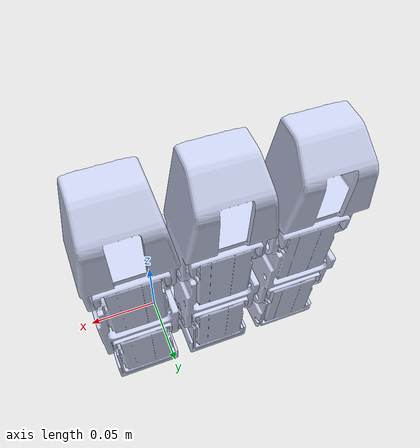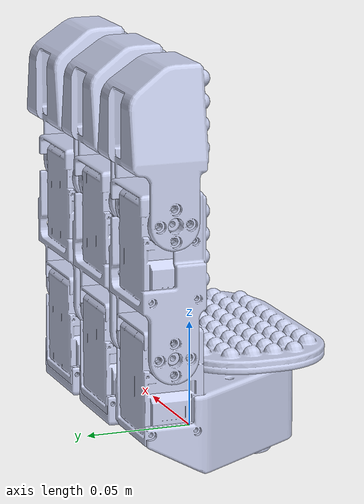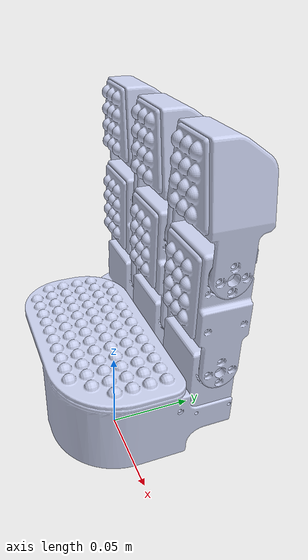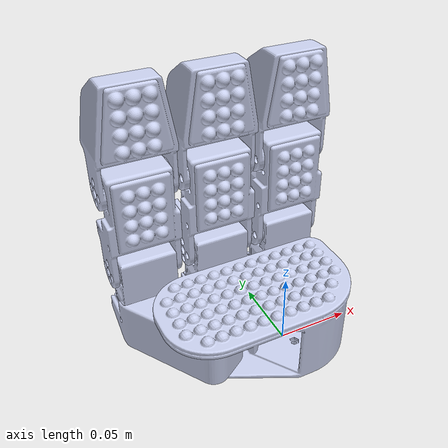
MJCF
<mujoco model="hand_asembly_ver2_URDF_4">
  <compiler angle="radian" meshdir="meshes"/>

  <default>
    <joint damping=".01"/>
    <position kp="1"/>
    <geom density="500" contype="0" conaffinity="0" group="2"/>
  </default>

  <asset>
    <mesh name="base_link" file="base_link.STL"/>
    <mesh name="proximal_thumb" file="proximal_thumb.STL"/>
    <mesh name="mideal_thumb" file="mideal_thumb.STL"/>
    <mesh name="distal_thumb" file="distal_thumb.STL"/>
    <mesh name="proximal_finger_first" file="proximal_finger_first.STL"/>
    <mesh name="mideal_finger first" file="mideal_finger first.STL"/>
    <mesh name="distal_finger first" file="distal_finger first.STL"/>
    <mesh name="proximal_finger_second" file="proximal_finger_second.STL"/>
    <mesh name="mideal_finger_second" file="mideal_finger_second.STL"/>
    <mesh name="distal_finger_second" file="distal_finger_second.STL"/>
  </asset>

  <worldbody>
    <geom type="mesh" rgba="0.792157 0.819608 0.933333 1" mesh="base_link"/>
    <geom pos="-0.0316 0.05702 0.025" quat="0.707105 0 -0.707108 0" type="mesh" rgba="0.792157 0.819608 0.933333 1" mesh="proximal_finger_first"/>
    <geom pos="0.0182 0.05702 0.025" quat="0.707107 0 -0.707107 0" type="mesh" rgba="0.792157 0.819608 0.933333 1" mesh="proximal_finger_second"/>

    <body name="proximal_thumb" pos="-0.05532 -0.00754 0.0075" quat="0.477798 0 0 0.87847">
      <inertial pos="0.0284057 -0.0131974 0.0551741" quat="0.710418 0.565303 -0.418745 -0.0197706" mass="1.85313" diaginertia="0.00127875 0.00126164 0.000574715"/>
      <joint name="joint_proximal_thumb" pos="0 0 0" axis="0 0 -1" range="-3.14 0"/>
      <geom type="mesh" rgba="0.792157 0.819608 0.933333 1" mesh="proximal_thumb"/>

      <body name="mideal_thumb" pos="0.057231 -0.0078705 0.05561" quat="0.621175 0.337847 -0.621177 0.337848">
        <inertial pos="0.00231731 -0.0205965 -0.020482" quat="0.820309 -0.0326504 0.0171454 0.570731" mass="3.53888" diaginertia="0.002494 0.00244324 0.00108519"/>
        <joint name="joint_mideal_thumb" pos="0 0 0" axis="0 0 -1" range="-1.0 0"/>
        <geom pos="0 0 0" quat="0.000796327 1 0 0" type="mesh" rgba="0.792157 0.819608 0.933333 1" mesh="mideal_thumb"/>

        <body name="distal_thumb" pos="0.05861 0 0">
          <inertial pos="-0.0518558 0.01816 0.0196176" quat="0.582258 -0.0179308 0.0327711 0.812146" mass="3.66037" diaginertia="0.00255017 0.00249207 0.0011303"/>
          <joint name="joint_distal_thumb" pos="0 0 0" axis="0 0 -1" range="-1.57 0"/>
          <geom quat="0.000796327 1 0 0" type="mesh" rgba="0.792157 0.819608 0.933333 1" mesh="distal_thumb"/>
        </body>
      </body>
    </body>

    <body name="mideal_finger first" pos="-0.0298251 0.04467 0.06311" quat="0.000563087 0.707105 -0.000563089 0.707108">
      <inertial pos="0.00231731 -0.0205965 -0.020482" quat="0.820309 -0.0326504 0.0171454 0.570731" mass="3.53888" diaginertia="0.002494 0.00244324 0.00108519"/>
      <joint name="joint_mideal_finger_first" pos="0 0 0" axis="0 0 -1" range="-1.0 0"/>
      <geom pos="0 0 0" quat="0.000796327 1 0 0" type="mesh" rgba="0.792157 0.819608 0.933333 1" mesh="mideal_finger first"/>

      <body name="distal_finger_first" pos="0.05861 0 0">
        <inertial pos="-0.0518558 0.01816 0.0196176" quat="0.582258 -0.0179308 0.0327711 0.812146" mass="3.66037" diaginertia="0.00255017 0.00249207 0.0011303"/>
        <joint name="joint_distal_finger_first" pos="0 0 0" axis="0 0 -1" range="-1.57 0"/>
        <geom quat="0.000796327 1 0 0" type="mesh" rgba="0.792157 0.819608 0.933333 1" mesh="distal_finger first"/>
      </body>
    </body>

    <body name="mideal_finger_second" pos="0.019975 0.04486 0.06311" quat="0.707107 0 -0.707107 0">
      <inertial pos="0.00231731 -0.0205965 -0.020482" quat="0.820309 -0.0326504 0.0171454 0.570731" mass="3.53888" diaginertia="0.002494 0.00244324 0.00108519"/>
      <joint name="joint_mideal_finger_second" pos="0 0 0" axis="0 0 1" range="-1.0 0"/>
      <geom type="mesh" rgba="0.792157 0.819608 0.933333 1" mesh="mideal_finger_second"/>

      <body name="distal_finger_second" pos="0.05861 0 0">
        <inertial pos="-0.0518558 0.01816 0.0196176" quat="0.582258 -0.0179308 0.0327711 0.812146" mass="3.66037" diaginertia="0.00255017 0.00249207 0.0011303"/>
        <joint name="joint_distal_finger_second" pos="0 0 0" axis="0 0 1" range="-1.57 0"/>
        <geom type="mesh" rgba="0.792157 0.819608 0.933333 1" mesh="distal_finger_second"/>
      </body>
    </body>
  </worldbody>

  <actuator>
    <position name="thumb_0" joint="joint_proximal_thumb" ctrlrange="-3.14 0"/>
    <position name="thumb_1" joint="joint_mideal_thumb" ctrlrange="-1.0 0"/>
    <position name="thumb_2" joint="joint_distal_thumb" ctrlrange="-1.57 0"/>
    <position name="f_finger_0" joint="joint_mideal_finger_first" ctrlrange="-1.0 0"/>
    <position name="f_finger_1" joint="joint_distal_finger_first" ctrlrange="-1.57 0"/>
    <position name="s_finger_0" joint="joint_mideal_finger_second" ctrlrange="-1.0 0"/>
    <position name="s_finger_1" joint="joint_distal_finger_second" ctrlrange="-1.57 0"/>
  </actuator>

</mujoco>
